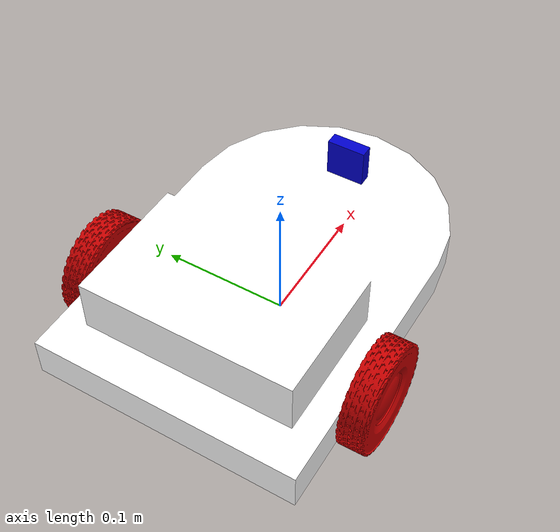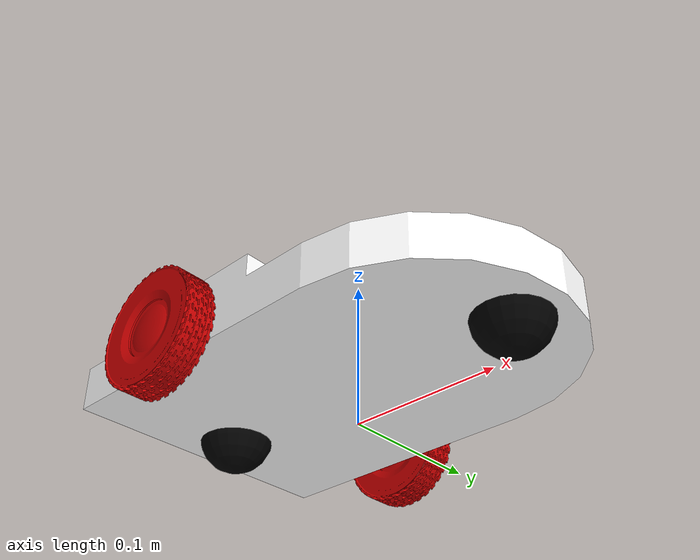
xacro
<?xml version="1.0"?>
<robot name="unicycle" xmlns:xacro="http://ros.org/wiki/xacro">

<!-- Defining the colors used in this robot -->
<material name="Black">
<color rgba="0.0 0.0 0.0 1.0"/>
</material>

<material name="Red">
<color rgba="0.8 0.0 0.0 1.0"/>
</material>

<material name="White">
<color rgba="1.0 1.0 1.0 1.0"/>
</material>

<material name="Blue">
<color rgba="0.0 0.0 0.8 1.0"/>
</material>

<!-- PROPERTY LIST -->
<!--All units in m-kg-s-radians unit system -->
<xacro:property name="M_PI" value="3.1415926535897931" />
<xacro:property name="M_PI_2" value="1.570796327" />
<xacro:property name="DEG_TO_RAD" value="0.017453293" />

<!-- Main body dimensions and mass -->
<xacro:property name="base_mass" value="5.0" />  <!-- kg -->
<xacro:property name="base_length" value="0.30" />
<xacro:property name="base_width" value="0.20" />
<xacro:property name="base_height" value="0.03" />

<!-- Front caster wheel mass, height and radius -->
<xacro:property name="caster_f_mass" value="0.5" />
<xacro:property name="caster_f_height" value="0.04" />
<xacro:property name="caster_f_radius" value="0.025" />

<!-- Back caster wheel mass, height and radius -->
<xacro:property name="caster_b_mass" value="0.5" /> <!-- in kg-->
<xacro:property name="caster_b_height" value="0.04" />
<xacro:property name="caster_b_radius" value="0.025" />

<!-- Wheels -->
<xacro:property name="wheel_radius" value="0.04" />
<xacro:property name="wheel_height" value="0.02" />
<xacro:property name="wheel_mass" value="2.5" />      <!--[kg]-->

<xacro:property name="base_x_origin_to_wheel_origin" value="0.06" />
<xacro:property name="base_y_origin_to_wheel_origin" value="0.22" />   <!-- base_width + wheel_height -->
<xacro:property name="base_z_origin_to_wheel_origin" value="0.0" />

<!-- Macro for calculating inertia of cylinder -->
<xacro:macro name="cylinder_inertia" params="m r h">
    <inertia  ixx="${m*(3*r*r+h*h)/12}" ixy = "0" ixz = "0"
                iyy="${m*(3*r*r+h*h)/12}" iyz = "0"
                izz="${m*r*r/2}" />
</xacro:macro>

<!-- Macro for calculating inertia of box -->
<xacro:macro name="box_inertia" params="m w d h">
    <inertia ixx="${1/12*m*(h*h + d*d)}" ixy = "0" ixz = "0"
                iyy="${1/12*m*(w*w + d*d)}" iyz = "0"
                izz="${1/12*m*(w*w + h*h)}" />
</xacro:macro>

<!-- BASE-GROUND -->
<!-- Center of main box projected to groudn -->
<link name="base_ground">
    <inertial>
        <mass value="0.0001" />
        <origin xyz="0 0 0" />
        <inertia ixx="0.0001" ixy="0.0" ixz="0.0"
            iyy="0.0001" iyz="0.0"
            izz="0.0001" />
    </inertial>

    <visual>
        <origin xyz="0 0 0" rpy="0 0 0" />
        <geometry>
            <box size="0.001 0.001 0.001" />
        </geometry>
    </visual>
</link>

<gazebo reference="base_ground">
    <turnGravityOff>false</turnGravityOff>
</gazebo>

<joint name="base_ground_joint" type="fixed">
    <origin xyz="0 0 ${wheel_radius - base_z_origin_to_wheel_origin}" rpy="0 0 0" />
    <parent link="base_ground"/>
    <child link="base_link" />
</joint>

<!-- MAIN BODY, base_link -->

<link name="base_link">
    <inertial>
        <mass value="${base_mass}" />
        <origin xyz="0 0 0" />
        <inertia ixx="0.0001" ixy="0.0" ixz="0.0"
            iyy="0.0001" iyz="0.0"
            izz="0.0001" />
        <box_inertia  m="${base_mass}" w="${base_width}" l = "${base_length}" h="${base_height}" />
    </inertial>

    <visual>
        <origin xyz="0 0 0" rpy="0 0 0" />
        <geometry>
            <mesh filename="package://dist_project/mesh/base.stl" scale="0.01 0.01 0.01" />
        </geometry>
        <material name="White" />
    </visual>

    <collision>
        <origin xyz="0 0 ${wheel_radius - base_z_origin_to_wheel_origin - 0.019}" rpy="0 0 0 " /> <!-- -0.019 added since tinkercad is not precise -->
        <geometry>
            <box size="${base_length} ${base_width} ${base_height + 0.04}" />
        </geometry>
    </collision>
</link>

<gazebo reference="base_link">
    <material>Gazebo/Red</material>
    <turnGravityOff>false</turnGravityOff>
</gazebo>

<link name="caster_front_link">
    <visual>
        <origin xyz="0 0.02 0" rpy="${M_PI/2} 0 0" />
        <geometry>
                <sphere radius="${caster_f_radius}" />
        </geometry>
        <material name="Black" />
    </visual>

    <collision>
        <geometry>
            <sphere radius="${caster_f_radius}" />
        </geometry>
        <origin xyz="0 0.02 0" rpy="${M_PI/2} 0 0" />
    </collision>

    <inertial>
        <mass value="${caster_f_mass}" />
        <origin xyz="0 0 0" />
        <inertia ixx="0.001" ixy="0.0" ixz="0.0"
                iyy="0.001" iyz="0.0"
                izz="0.001" />
    </inertial>
</link>

<joint name="caster_front_joint" type="fixed">
    <parent link="base_link"/>
    <child link="caster_front_link"/>
    <origin xyz="0.115 0.0 0.007" rpy="${-M_PI/2} 0 0"/>
</joint>

<gazebo reference="caster_front_link">
    <turnGravityOff>false</turnGravityOff>
    <mu1 value="0.000001"/>
    <mu2 value="0.000001"/>
    <material>Gazebo/Black</material>
</gazebo>

<link name="caster_back_link">
    <visual>
        <origin xyz="0.02 0.02 0 " rpy="${M_PI/2} 0 0" />
        <geometry>
            <sphere radius="${caster_b_radius}" />
        </geometry>
        <material name="Black" />
    </visual>

    <collision>
        <geometry>
            <sphere radius="${caster_b_radius}" />
        </geometry>
        <origin xyz="0.02 0.02 0 " rpy="${M_PI/2} 0 0" />
    </collision>

    <inertial>
        <mass value="${caster_b_mass}" />
        <origin xyz="0 0 0" />
        <inertia ixx="0.001" ixy="0.0" ixz="0.0"
                iyy="0.001" iyz="0.0"
                izz="0.001" />
    </inertial>
</link>

<joint name="caster_back_joint" type="fixed">
    <parent link="base_link"/>
    <child link="caster_back_link"/>
    <origin xyz="-0.135 0.0 0.009" rpy="${-M_PI/2} 0 0"/>
</joint>

<gazebo reference="caster_back_link">
    <turnGravityOff>false</turnGravityOff>
    <mu1 value="0.000001"/>
    <mu2 value="0.000001"/>
    <material>Gazebo/Black</material>
</gazebo>

<!-- RIGHT WHEEL DEFINITION -->

<link name="front_right_wheel">
    <visual>
    <origin xyz="0 0 0" rpy="${M_PI/2} 0  0 " />
    <geometry>
        <mesh filename="package://dist_project/mesh/wheel.stl" scale="0.001 0.001 0.001" />
    </geometry>
    <material name="Red">
        <color rgba="0.8 0.0 0.0 1.0"/>
    </material>
    </visual>

    <collision>
    <origin xyz="0 0 0" rpy="${M_PI/2} 0 0 " />
    <geometry>
        <cylinder length="${wheel_height}" radius="${wheel_radius}" />
    </geometry>
    </collision>

    <inertial>
    <mass value="${wheel_mass}" />
    <origin xyz="0 0 0" />
            <inertia ixx="0.001" ixy="0.0" ixz="0.0"
            iyy="0.001" iyz="0.0"
            izz="0.001" />
    </inertial>
</link>

<!-- Physic parameters for Gazebo -->
<gazebo reference="front_right_wheel">
    <mu1 value="1.0"/>
    <mu2 value="1.0"/>
    <kp  value="10000000.0"/>
    <kd  value="1.0" />
    <fdir1 value="1 0 0"/>
    <material>Gazebo/Grey</material>
    <turnGravityOff>false</turnGravityOff>
</gazebo>

<joint name="front_right_wheel_joint" type="continuous">
    <parent link="base_link"/>
    <child link="front_right_wheel"/>
    <origin xyz="${-1 * base_x_origin_to_wheel_origin} ${-0.5 * base_y_origin_to_wheel_origin} ${base_z_origin_to_wheel_origin}" rpy="0 0 0" />
    <axis xyz="0 1 0" rpy="0 0 0" />
    <limit effort="100" velocity="100"/>
    <joint_properties damping="0.0" friction="0.0"/>
</joint>

<!-- Transmission: to link joint and controller -->
<transmission name="front_right_wheel_joint_trans">
    <type>transmission_interface/SimpleTransmission</type>
    <joint name="front_right_wheel_joint" />

    <!-- Define Actuation type-->
    <actuator name="front_right_wheel_joint_motor">
    <hardwareInterface>EffortJointInterface</hardwareInterface>
    <mechanicalReduction>1</mechanicalReduction>
    </actuator>
</transmission>

<!-- LEFT WHEEL DEFINITION -->

<link name="front_left_wheel">
    <visual>
    <origin xyz="0 0 0" rpy="${M_PI/2} 0  0 " />
    <geometry>
        <mesh filename="package://dist_project/mesh/wheel.stl" scale="0.001 0.001 0.001" />
    </geometry>
    <material name="Red">
        <color rgba="0.8 0.0 0.0 1.0"/>
    </material>
    </visual>

    <collision>
    <origin xyz="0 0 0" rpy="${M_PI/2} 0 0 " />
    <geometry>
        <cylinder length="${wheel_height}" radius="${wheel_radius}" />
    </geometry>
    </collision>

    <inertial>
    <mass value="${wheel_mass}" />
    <origin xyz="0 0 0" />
            <inertia ixx="0.001" ixy="0.0" ixz="0.0"
            iyy="0.001" iyz="0.0"
            izz="0.001" />
    </inertial>
</link>

<!-- Physic parameters for Gazebo -->
<gazebo reference="front_left_wheel">
    <mu1 value="1.0"/>
    <mu2 value="1.0"/>
    <kp  value="10000000.0"/>
    <kd  value="1.0" />
    <fdir1 value="1 0 0"/>
    <material>Gazebo/Grey</material>
    <turnGravityOff>false</turnGravityOff>
</gazebo>

<joint name="front_left_wheel_joint" type="continuous">
    <parent link="base_link"/>
    <child link="front_left_wheel"/>
    <origin xyz="${-1 * base_x_origin_to_wheel_origin} ${0.5 * base_y_origin_to_wheel_origin} ${base_z_origin_to_wheel_origin}" rpy="0 0 0" />
    <axis xyz="0 1 0" rpy="0 0 0" />
    <limit effort="100" velocity="100"/>
    <joint_properties damping="0.0" friction="0.0"/>
</joint>

<!-- Transmission: to link joint and controller -->
<transmission name="front_left_wheel_joint_trans">
    <type>transmission_interface/SimpleTransmission</type>
    <joint name="front_left_wheel_joint" />

    <!-- Define Actuation type-->
    <actuator name="front_left_wheel_joint_motor">
    <hardwareInterface>EffortJointInterface</hardwareInterface>
    <mechanicalReduction>1</mechanicalReduction>
    </actuator>
</transmission>

<!-- CAMERA DEFINITION -->

<link name="camera_link">
    <visual>
        <origin xyz="0 0 0" rpy="0 0 0" />
        <geometry>
            <box size="0.01 0.03 0.03" />
        </geometry>
        <material name="Blue" />
    </visual>
</link>

<joint name="camera_optical_joint" type="fixed">
    <parent link="camera_link" />
    <child link="camera_optical_link" />
    <origin xyz="0 0 0" rpy="${-pi/2} 0 ${-pi/2}" />
</joint>

<link name="camera_optical_link"></link>

<joint name="camera_joint" type="fixed">
    <parent link="base_link"/>
    <child link="camera_link"/>
    <origin xyz="0.1 0 ${base_height/2 + 0.015}" rpy="0 0 0"/>
</joint>

<gazebo reference="camera_link">
    <material>Gazebo/Blue</material>

    <sensor name="camera" type="camera">
        <pose> 0 0 0 0 0 0 </pose>
        <visualize>true</visualize>
        <update_rate>30</update_rate>
        <camera>
            <horizontal_fov>2</horizontal_fov>
            <image>
                <format>R8G8B8</format>
                <width>640</width>
                <height>480</height>
            </image>
            <clip>
                <near>0.05</near>
                <far>8.00</far>
            </clip>
            <noise>
                <type>gaussian</type>
                <mean>0.0</mean>
                <stddev>0.07</stddev>
            </noise>
        </camera>
        <plugin name="camera_controller" filename="libgazebo_ros_camera.so">
            <frame_name>camera_optical_link</frame_name>
            <cameraName>camera</cameraName>
        </plugin>
    </sensor>
</gazebo>

<link name="camera_tip_link">
    <visual>
        <origin xyz="0 0 0" rpy="0 0 0" />
        <geometry>
            <box size="0.004 0.01 0.01" />
        </geometry>
        <material name="Blue" />
    </visual>
</link>

<joint name="camera_tip_joint" type="fixed">
    <parent link="camera_link"/>
    <child link="camera_tip_link"/>
    <origin xyz="${0.005+0.002} 0 0" rpy="0 0 0"/>
</joint>

<gazebo reference="camera_tip_link">
    <turnGravityOff>false</turnGravityOff>
    <material>Gazebo/Blue</material>
</gazebo>

<!-- Gazebo Plugins -->
<gazebo>
    <plugin name="differential_drive_controller" filename="libgazebo_ros_diff_drive.so">
        <legacyMode>true</legacyMode>
        <rosDebugLevel>Debug</rosDebugLevel>
        <publishWheelTF>true</publishWheelTF>
        <publishWheelJointState>true</publishWheelJointState>
        <alwaysOn>true</alwaysOn>
        <updateRate>10.0</updateRate>
        <leftJoint>front_left_wheel_joint</leftJoint>
        <rightJoint>front_right_wheel_joint</rightJoint>
        <wheelSeparation>${base_width}</wheelSeparation>
        <wheelDiameter>${2*wheel_radius}</wheelDiameter>
        <broadcastTF>1</broadcastTF>
        <wheelTorque>30</wheelTorque>
        <wheelAcceleration>1.8</wheelAcceleration>
        <commandTopic>cmd_vel</commandTopic>
        <odometryFrame>odom</odometryFrame>
        <odometryTopic>odom</odometryTopic>
        <robotBaseFrame>base_ground</robotBaseFrame>
        <odometrySource>world</odometrySource>
        <publishTf>1</publishTf>
        <publishOdomTF>true</publishOdomTF>
    </plugin>
    <plugin name="p3d_base_controller" filename="libgazebo_ros_p3d.so">
        <alwaysOn>true</alwaysOn>
        <updateRate>10</updateRate>
        <bodyName>base_link</bodyName>
        <topicName>ground_truth/state</topicName>
        <frameName>world</frameName>
    </plugin>
</gazebo>

</robot>
